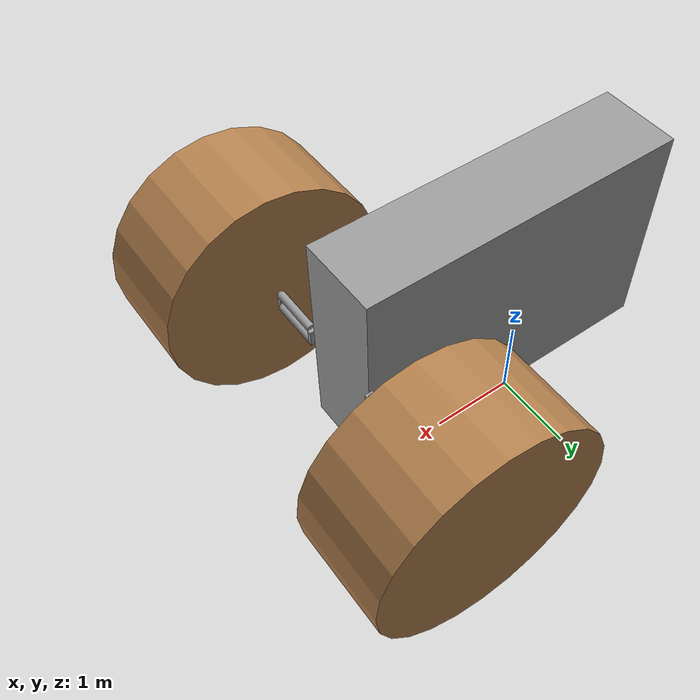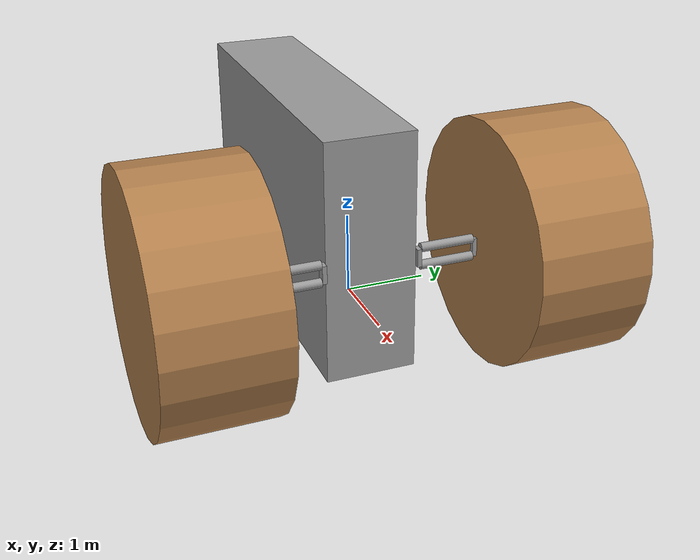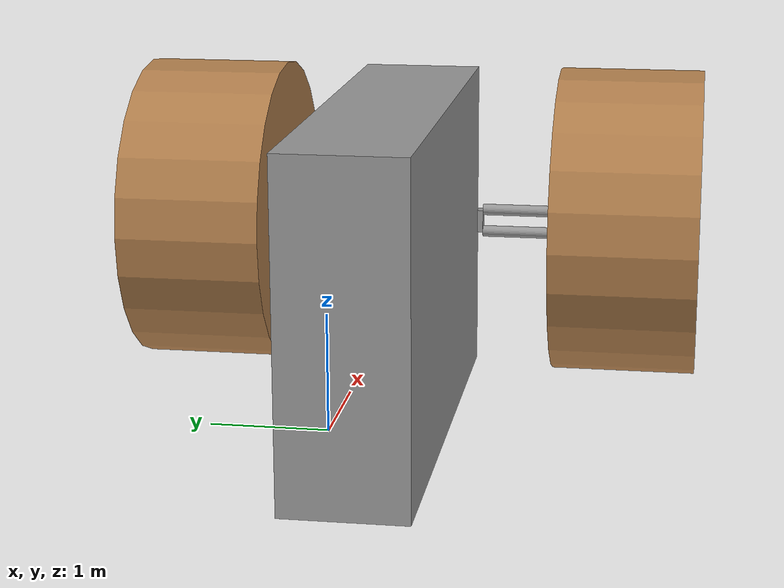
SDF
<?xml version="1.0" ?>

<sdf version="1.5">
  <model name="suspension_test2">

    <link name="chassis">
      <pose>0 -0.5 1.4  0 0 0</pose>
      <inertial>
        <mass>10000</mass>
        <inertia>
          <ixx>10000</ixx>
          <iyy>10000</iyy>
          <izz>10000</izz>
          <ixy>0</ixy>
          <ixz>0</ixz>
          <iyz>0</iyz>
        </inertia>
      </inertial>
      <collision name="collision">
        <geometry>
          <box>
            <size>4.0 1.0 2.7</size>
          </box>
        </geometry>
      </collision>
      <visual name="visual">
        <geometry>
          <box>
            <size>4.0 1.0 2.7</size>
          </box>
        </geometry>
        <material>
          <script>
            <uri>file://media/materials/scripts/gazebo.material</uri>
            <name>Gazebo/Grey</name>
          </script>
        </material>
      </visual>
    </link>

    <model name="left_wheel_assy">
      <pose>2 0 0 0 0 0</pose>
      <include>
        <uri>model://unsteered_suspension</uri>
      </include>
    </model>

    <joint name="chassis_to_left_wheel" type="fixed">
      <parent>chassis</parent>
      <child>left_wheel_assy::unsteered_suspension::inner_mount</child>
      <axis>
        <xyz>0 0 0</xyz>
      </axis>
    </joint>

    <model name="right_wheel_assy">
      <pose>2 -1 0 0 0 3.14159</pose>
      <include>
        <uri>model://unsteered_suspension</uri>
      </include>
    </model>

    <joint name="chassis_to_right_wheel" type="fixed">
      <parent>chassis</parent>
      <child>right_wheel_assy::unsteered_suspension::inner_mount</child>
      <axis>
        <xyz>0 0 0</xyz>
      </axis>
    </joint>

    <plugin filename="libgazebo_ros_force.so" name="gazebo_ros_force">
      <bodyName>chassis</bodyName>
      <topicName>chassis_force</topicName>
    </plugin>

  </model>
</sdf>

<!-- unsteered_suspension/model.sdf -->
<sdf version="1.5">
  <model name="unsteered_suspension">

<!-- Inner Chassis Mount -->
    <link name="inner_mount">
      <pose>0 0.025 1.35  0 0 0</pose>
      <inertial>
        <pose>0 0.025 1.35  0 0 0</pose>
        <mass>10</mass>
        <inertia>
          <ixx>10</ixx>
          <iyy>10</iyy>
          <izz>10</izz>
          <ixy>0</ixy>
          <ixz>0</ixz>
          <iyz>0</iyz>
        </inertia>
      </inertial>
      <collision name="collision">
        <geometry>
          <box>
            <size>0.1 0.05 0.2</size>
          </box>
        </geometry>
      </collision>
      <visual name="visual">
        <geometry>
          <box>
            <size>0.1 0.05 0.2</size>
          </box>
        </geometry>
        <material>
          <script>
            <uri>file://media/materials/scripts/gazebo.material</uri>
            <name>Gazebo/Grey</name>
          </script>
        </material>
      </visual>
    </link>

<!-- upper arm -->
    <link name="upper_suspension_arm">
      <pose>0 0.35 1.45  -1.5707963267948966 0 0</pose>
      <inertial>
        <mass>20</mass>
        <inertia>
          <ixx>20</ixx>
          <iyy>20</iyy>
          <izz>20</izz>
          <ixy>0</ixy>
          <ixz>0</ixz>
          <iyz>0</iyz>
        </inertia>
      </inertial>
      <collision name="collision">
        <geometry>
          <cylinder>
            <radius>0.05</radius>
            <length>0.6</length>
          </cylinder>
        </geometry>
      </collision>
      <visual name="visual">
        <geometry>
          <cylinder>
            <radius>0.05</radius>
            <length>0.6</length>
          </cylinder>
        </geometry>
        <material>
          <script>
            <uri>file://media/materials/scripts/gazebo.material</uri>
            <name>Gazebo/Grey</name>
          </script>
        </material>
      </visual>
    </link>

    <joint name="inner_moount_to_upper_arm" type="revolute">
      <parent>inner_mount</parent>
      <child>upper_suspension_arm</child>
      <pose>0 0 -0.3 0 0 0</pose>
      <axis>
        <xyz>1 0 0</xyz>
        <limit>
          <upper>0.5</upper>
          <lower>-0.5</lower>
        </limit>
        <dynamics>
          <damping>10000</damping>
          <spring_stiffness>100000</spring_stiffness>
          <spring_reference>-0.5</spring_reference>
        </dynamics>
      </axis>
    </joint>

    <joint name="wheel_moount_to_upper_arm" type="revolute">
      <parent>wheel_mount</parent>
      <child>upper_suspension_arm</child>
      <pose>0 0 0.3 0 0 0</pose>
      <axis>
        <xyz>1 0 0</xyz>
      </axis>
    </joint>

<!-- lower arm -->
    <link name="lower_suspension_arm">
      <pose>0 0.35 1.25  -1.5707963267948966 0 0</pose>
      <inertial>
        <mass>20</mass>
        <inertia>
          <ixx>20</ixx>
          <iyy>20</iyy>
          <izz>20</izz>
          <ixy>0</ixy>
          <ixz>0</ixz>
          <iyz>0</iyz>
        </inertia>
      </inertial>
      <collision name="collision">
        <geometry>
          <cylinder>
            <radius>0.05</radius>
            <length>0.6</length>
          </cylinder>
        </geometry>
      </collision>
      <visual name="visual">
        <geometry>
          <cylinder>
            <radius>0.05</radius>
            <length>0.6</length>
          </cylinder>
        </geometry>
        <material>
          <script>
            <uri>file://media/materials/scripts/gazebo.material</uri>
            <name>Gazebo/Grey</name>
          </script>
        </material>
      </visual>
    </link>

    <joint name="inner_moount_to_lower_arm" type="revolute">
      <parent>inner_mount</parent>
      <child>lower_suspension_arm</child>
      <pose>0 0 -0.3 0 0 0</pose>
      <axis>
        <xyz>1 0 0</xyz>
        <limit>
          <upper>0.5</upper>
          <lower>-0.5</lower>
        </limit>
        <dynamics>
          <damping>0.5</damping>
        </dynamics>
      </axis>
    </joint>

    <joint name="wheel_moount_to_lower_arm" type="revolute">
      <parent>wheel_mount</parent>
      <child>lower_suspension_arm</child>
      <pose>-0 0 0.3 0 0 0</pose>
      <axis>
        <xyz>1 0 0</xyz>
      </axis>
    </joint>

<!-- Wheel Mount -->
    <link name="wheel_mount">
      <pose>0 0.675 1.35  0 0 0</pose>
      <inertial>
        <mass>10</mass>
        <inertia>
          <ixx>10</ixx>
          <iyy>10</iyy>
          <izz>10</izz>
          <ixy>0</ixy>
          <ixz>0</ixz>
          <iyz>0</iyz>
        </inertia>
      </inertial>
      <collision name="collision">
        <geometry>
          <box>
            <size>0.05 0.05 0.2</size>
          </box>
        </geometry>
      </collision>
      <visual name="visual">
        <geometry>
          <box>
            <size>0.05 0.05 0.2</size>
          </box>
        </geometry>
        <material>
          <script>
            <uri>file://media/materials/scripts/gazebo.material</uri>
            <name>Gazebo/Grey</name>
          </script>
        </material>
      </visual>
    </link>

<!-- Wheel -->
    <link name="wheel_unsteered">
      <pose>0 1.3575 1.4  -1.5707963267948966 0 0</pose>
      <inertial>
        <mass>2000</mass>
        <inertia>
          <ixx>100</ixx>
          <iyy>100</iyy>
          <izz>100</izz>
          <ixy>0</ixy>
          <ixz>0</ixz>
          <iyz>0</iyz>
        </inertia>
      </inertial>
      <collision name="collision">
        <geometry>
          <cylinder>
            <radius>1.35</radius>
            <length>0.5</length>
          </cylinder>
        </geometry>
      </collision>
      <visual name="visual">
        <geometry>
          <cylinder>
            <radius>1.35</radius>
            <length>1.25</length>
          </cylinder>
        </geometry>
        <material>
          <script>
            <uri>file://media/materials/scripts/gazebo.material</uri>
            <name>Gazebo/Wood</name>
          </script>
        </material>
      </visual>
    </link>

    <joint type="revolute" name="unsteered_wheel_joint">
      <parent>wheel_mount</parent>
      <child>wheel_unsteered</child>
      <axis>
        <xyz>0 0 1</xyz>
      </axis>
      <physics>
        <ode>
          <limit>
            <cfm>0.0</cfm>
            <erp>0.9</erp>
          </limit>
        </ode>
      </physics>
    </joint>

  </model>
</sdf>
